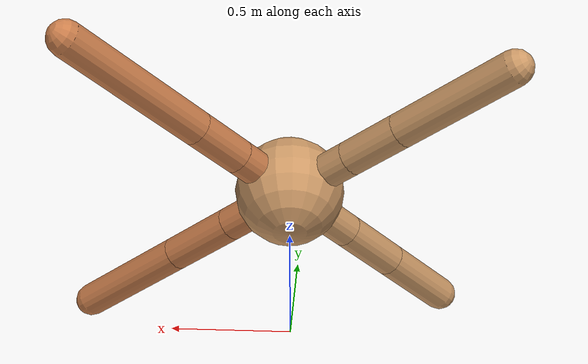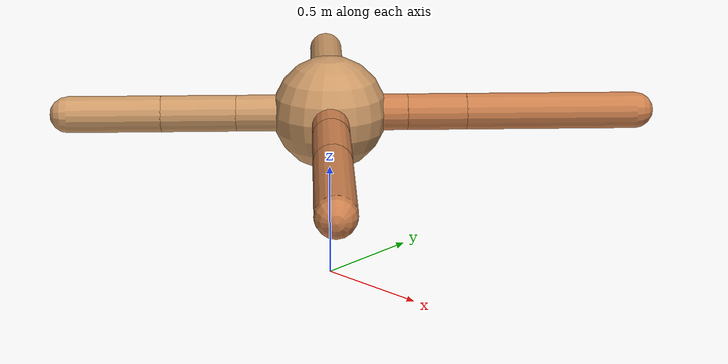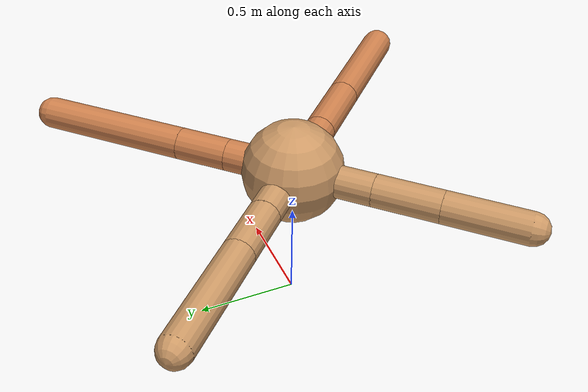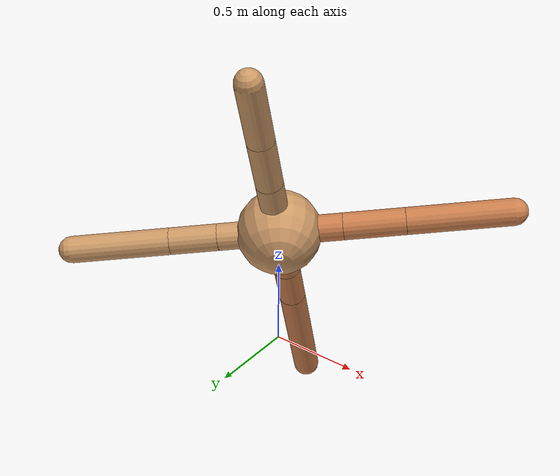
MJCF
<mujoco model="ant">
  <compiler angle="degree" coordinate="local" inertiafromgeom="true" />
  <option integrator="RK4" timestep="0.01" />
  <custom>
    <numeric data="0.0 0.0 0.55 1.0 0.0 0.0 0.0 0.0 1.0 0.0 -1.0 0.0 -1.0 0.0 1.0" name="init_qpos" />
  </custom>
  <default>
    <joint armature="1" damping="1" limited="true" />
    <geom conaffinity="0" condim="3" density="5.0" friction="1.5 0.1 0.1" margin="0.01" rgba="0.8 0.6 0.4 1" />
  </default>
  <worldbody>
    <body name="torso" pos="0 0 0.75">
      <geom name="torso_geom" pos="0 0 0" size="0.25" type="sphere" />

      <body name="front_left_leg" pos="0 0 0">
        <geom fromto="0.0 0.0 0.0 0.2405547645637708 0.2405547645637708 0.0" name="aux_1_geom" size="0.08" type="capsule" rgba=".8 .5 .3 1" />
        <body name="aux_1" pos="0.2405547645637708 0.2405547645637708 0.0">
          <joint axis="0 0 1" name="hip_1" pos="0.0 0.0 0.0" range="-40 40" type="hinge" />
          <geom fromto="0.0 0.0 0.0 0.1827392338982283 0.1827392338982283 0.0" name="left_leg_geom" size="0.08" type="capsule" rgba=".8 .5 .3 1" />
          <body pos="0.1827392338982283 0.1827392338982283 0.0" name="front_left_foot">
            <joint axis="-1 1 0" name="ankle_1" pos="0.0 0.0 0.0" range="30 100" type="hinge" />
            <geom fromto="0.0 0.0 0.0 0.5270432949227372 0.5270432949227372 0.0" name="left_ankle_geom" size="0.08" type="capsule" rgba=".8 .5 .3 1" />
          </body>
        </body>
      </body>
      <body name="front_right_leg" pos="0 0 0">
        <geom fromto="0.0 0.0 0.0 -0.25342541029901583 0.25342541029901583 0.0" name="aux_2_geom" size="0.08" type="capsule" />
        <body name="aux_2" pos="-0.25342541029901583 0.25342541029901583 0.0">
          <joint axis="0 0 1" name="hip_2" pos="0.0 0.0 0.0" range="-40 40" type="hinge" />
          <geom fromto="0.0 0.0 0.0 -0.2003119703594332 0.2003119703594332 0.0" name="right_leg_geom" size="0.08" type="capsule" />
          <body pos="-0.2003119703594332 0.2003119703594332 0.0" name="front_right_foot">
            <joint axis="1 1 0" name="ankle_2" pos="0.0 0.0 0.0" range="-100 -30" type="hinge" />
            <geom fromto="0.0 0.0 0.0 -0.41961461008012685 0.41961461008012685 0.0" name="right_ankle_geom" size="0.08" type="capsule" />
          </body>
        </body>
      </body>
      <body name="left_back_leg" pos="0 0 0">
        <geom fromto="0.0 0.0 0.0 -0.28828229469787153 -0.28828229469787153 0.0" name="aux_3_geom" size="0.08" type="capsule" />
        <body name="aux_3" pos="-0.28828229469787153 -0.28828229469787153 0.0">
          <joint axis="0 0 1" name="hip_3" pos="0.0 0.0 0.0" range="-40 40" type="hinge" />
          <geom fromto="0.0 0.0 0.0 -0.2304178399975353 -0.2304178399975353 0.0" name="back_leg_geom" size="0.08" type="capsule" />
          <body pos="-0.2304178399975353 -0.2304178399975353 0.0" name="left_back_foot">
            <joint axis="-1 1 0" name="ankle_3" pos="0.0 0.0 0.0" range="-100 -30" type="hinge" />
            <geom fromto="0.0 0.0 0.0 -0.2873601631086313 -0.2873601631086313 0.0" name="third_ankle_geom" size="0.08" type="capsule" />
          </body>
        </body>
      </body>
      <body name="right_back_leg" pos="0 0 0">
        <geom fromto="0.0 0.0 0.0 0.26422776725990044 -0.26422776725990044 0.0" name="aux_4_geom" size="0.08" type="capsule" rgba=".8 .5 .3 1" />
        <body name="aux_4" pos="0.26422776725990044 -0.26422776725990044 0.0">
          <joint axis="0 0 1" name="hip_4" pos="0.0 0.0 0.0" range="-40 40" type="hinge" />
          <geom fromto="0.0 0.0 0.0 0.2560240665285174 -0.2560240665285174 0.0" name="rightback_leg_geom" size="0.08" type="capsule" rgba=".8 .5 .3 1" />
          <body pos="0.2560240665285174 -0.2560240665285174 0.0" name="right_back_foot">
            <joint axis="1 1 0" name="ankle_4" pos="0.0 0.0 0.0" range="30 100" type="hinge" />
            <geom fromto="0.0 0.0 0.0 0.4348717174056697 -0.4348717174056697 0.0" name="fourth_ankle_geom" size="0.08" type="capsule" rgba=".8 .5 .3 1" />
          </body>
        </body>
      </body>
    </body>
  </worldbody>
  <actuator>
    <motor ctrllimited="true" ctrlrange="-1.0 1.0" joint="hip_4" gear="150" />
    <motor ctrllimited="true" ctrlrange="-1.0 1.0" joint="ankle_4" gear="150" />
    <motor ctrllimited="true" ctrlrange="-1.0 1.0" joint="hip_1" gear="150" />
    <motor ctrllimited="true" ctrlrange="-1.0 1.0" joint="ankle_1" gear="150" />
    <motor ctrllimited="true" ctrlrange="-1.0 1.0" joint="hip_2" gear="150" />
    <motor ctrllimited="true" ctrlrange="-1.0 1.0" joint="ankle_2" gear="150" />
    <motor ctrllimited="true" ctrlrange="-1.0 1.0" joint="hip_3" gear="150" />
    <motor ctrllimited="true" ctrlrange="-1.0 1.0" joint="ankle_3" gear="150" />
  </actuator>
</mujoco>
